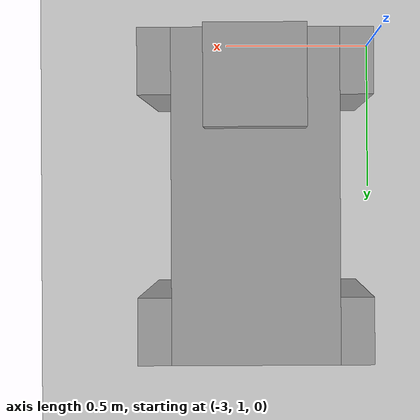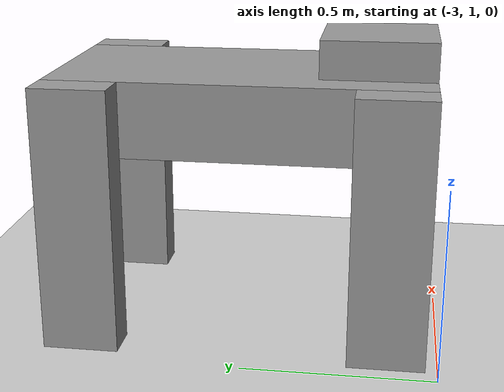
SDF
<sdf version="1.6">
 <world name="default">
  <model name="ground_plane">
   <static>1</static>
   <link name="link">
    <collision name="collision">
     <geometry><plane><normal>0 0 1</normal><size>100 100</size></plane></geometry>
     <surface>
      <contact><collide_bitmask>65535</collide_bitmask></contact>
      <friction><ode><mu>100</mu><mu2>50</mu2></ode></friction>
     </surface>
    </collision>
    <visual name="visual">
     <cast_shadows>0</cast_shadows>
     <geometry><plane><normal>0 0 1</normal><size>100 100</size></plane></geometry>
     <material>
      <script><uri>file://media/materials/scripts/gazebo.material</uri><name>Gazebo/Grey</name></script>
     </material>
    </visual>
   </link>
  </model>
  <model name="robot">
   <link name="link_1_clone">
    <inertial>
     <mass>1</mass>
     <inertia>
      <ixx>0.166667</ixx>
      <ixy>0</ixy>
      <ixz>0</ixz>
      <iyy>0.166667</iyy>
      <iyz>0</iyz>
      <izz>0.166667</izz>
     </inertia>
    </inertial>
    <pose>1e-06 0.058332 0.141667 0 -0 0</pose>
    <visual name="visual">
     <geometry><box><size>0.5 1 0.2</size></box></geometry>
     <material>
      <lighting>1</lighting>
      <script><uri>file://media/materials/scripts/gazebo.material</uri><name>Gazebo/Grey</name></script>
      <shader type="pixel"><normal_map>__default__</normal_map></shader>
      <ambient>0.3 0.3 0.3 1</ambient>
      <diffuse>0.7 0.7 0.7 1</diffuse>
      <specular>0.01 0.01 0.01 1</specular>
      <emissive>0 0 0 1</emissive>
     </material>
    </visual>
    <collision name="collision">
     <geometry><box><size>0.5 1 0.2</size></box></geometry>
     <surface>
      <friction>
       <ode><mu>1</mu><mu2>1</mu2><fdir1>0 0 0</fdir1><slip1>0</slip1><slip2>0</slip2></ode>
       <torsional>
        <coefficient>1</coefficient>
        <patch_radius>0</patch_radius>
        <surface_radius>0</surface_radius>
        <use_patch_radius>1</use_patch_radius>
        <ode><slip>0</slip></ode>
       </torsional>
      </friction>
      <bounce><restitution_coefficient>0</restitution_coefficient><threshold>1e+06</threshold></bounce>
      <contact>
       <collide_without_contact>0</collide_without_contact>
       <collide_without_contact_bitmask>1</collide_without_contact_bitmask>
       <collide_bitmask>1</collide_bitmask>
       <ode>
        <soft_cfm>0</soft_cfm>
        <soft_erp>0.2</soft_erp>
        <kp>1e+13</kp>
        <kd>1</kd>
        <max_vel>0.01</max_vel>
        <min_depth>0</min_depth>
       </ode>
       <bullet>
        <split_impulse>1</split_impulse>
        <split_impulse_penetration_threshold>-0.01</split_impulse_penetration_threshold>
        <soft_cfm>0</soft_cfm>
        <soft_erp>0.2</soft_erp>
        <kp>1e+13</kp>
        <kd>1</kd>
       </bullet>
      </contact>
     </surface>
    </collision>
   </link>
   <link name="link_3_clone">
    <inertial>
     <mass>1</mass>
     <inertia>
      <ixx>0.166667</ixx>
      <ixy>0</ixy>
      <ixz>0</ixz>
      <iyy>0.166667</iyy>
      <iyz>0</iyz>
      <izz>0.166667</izz>
     </inertia>
    </inertial>
    <pose>0.300001 0.458331 -0.108333 0 -0 0</pose>
    <visual name="visual">
     <geometry><box><size>0.1 0.2 0.7</size></box></geometry>
     <material>
      <lighting>1</lighting>
      <script><uri>file://media/materials/scripts/gazebo.material</uri><name>Gazebo/Grey</name></script>
      <shader type="pixel"><normal_map>__default__</normal_map></shader>
      <ambient>0.3 0.3 0.3 1</ambient>
      <diffuse>0.7 0.7 0.7 1</diffuse>
      <specular>0.01 0.01 0.01 1</specular>
      <emissive>0 0 0 1</emissive>
     </material>
    </visual>
    <collision name="collision">
     <geometry><box><size>0.1 0.2 0.7</size></box></geometry>
     <surface>
      <friction>
       <ode><mu>1</mu><mu2>1</mu2><fdir1>0 0 0</fdir1><slip1>0</slip1><slip2>0</slip2></ode>
       <torsional>
        <coefficient>1</coefficient>
        <patch_radius>0</patch_radius>
        <surface_radius>0</surface_radius>
        <use_patch_radius>1</use_patch_radius>
        <ode><slip>0</slip></ode>
       </torsional>
      </friction>
      <bounce><restitution_coefficient>0</restitution_coefficient><threshold>1e+06</threshold></bounce>
      <contact>
       <collide_without_contact>0</collide_without_contact>
       <collide_without_contact_bitmask>1</collide_without_contact_bitmask>
       <collide_bitmask>1</collide_bitmask>
       <ode>
        <soft_cfm>0</soft_cfm>
        <soft_erp>0.2</soft_erp>
        <kp>1e+13</kp>
        <kd>1</kd>
        <max_vel>0.01</max_vel>
        <min_depth>0</min_depth>
       </ode>
       <bullet>
        <split_impulse>1</split_impulse>
        <split_impulse_penetration_threshold>-0.01</split_impulse_penetration_threshold>
        <soft_cfm>0</soft_cfm>
        <soft_erp>0.2</soft_erp>
        <kp>1e+13</kp>
        <kd>1</kd>
       </bullet>
      </contact>
     </surface>
    </collision>
   </link>
   <link name="link_3_clone_clone">
    <inertial>
     <mass>1</mass>
     <inertia>
      <ixx>0.166667</ixx>
      <ixy>0</ixy>
      <ixz>0</ixz>
      <iyy>0.166667</iyy>
      <iyz>0</iyz>
      <izz>0.166667</izz>
     </inertia>
    </inertial>
    <pose>-0.299999 -0.341668 -0.108333 0 -0 0</pose>
    <visual name="visual">
     <geometry><box><size>0.1 0.2 0.7</size></box></geometry>
     <material>
      <lighting>1</lighting>
      <script><uri>file://media/materials/scripts/gazebo.material</uri><name>Gazebo/Grey</name></script>
      <shader type="pixel"><normal_map>__default__</normal_map></shader>
      <ambient>0.3 0.3 0.3 1</ambient>
      <diffuse>0.7 0.7 0.7 1</diffuse>
      <specular>0.01 0.01 0.01 1</specular>
      <emissive>0 0 0 1</emissive>
     </material>
    </visual>
    <collision name="collision">
     <geometry><box><size>0.1 0.2 0.7</size></box></geometry>
     <surface>
      <friction>
       <ode><mu>1</mu><mu2>1</mu2><fdir1>0 0 0</fdir1><slip1>0</slip1><slip2>0</slip2></ode>
       <torsional>
        <coefficient>1</coefficient>
        <patch_radius>0</patch_radius>
        <surface_radius>0</surface_radius>
        <use_patch_radius>1</use_patch_radius>
        <ode><slip>0</slip></ode>
       </torsional>
      </friction>
      <bounce><restitution_coefficient>0</restitution_coefficient><threshold>1e+06</threshold></bounce>
      <contact>
       <collide_without_contact>0</collide_without_contact>
       <collide_without_contact_bitmask>1</collide_without_contact_bitmask>
       <collide_bitmask>1</collide_bitmask>
       <ode>
        <soft_cfm>0</soft_cfm>
        <soft_erp>0.2</soft_erp>
        <kp>1e+13</kp>
        <kd>1</kd>
        <max_vel>0.01</max_vel>
        <min_depth>0</min_depth>
       </ode>
       <bullet>
        <split_impulse>1</split_impulse>
        <split_impulse_penetration_threshold>-0.01</split_impulse_penetration_threshold>
        <soft_cfm>0</soft_cfm>
        <soft_erp>0.2</soft_erp>
        <kp>1e+13</kp>
        <kd>1</kd>
       </bullet>
      </contact>
     </surface>
    </collision>
   </link>
   <link name="link_3_clone_clone_0">
    <inertial>
     <mass>1</mass>
     <inertia>
      <ixx>0.166667</ixx>
      <ixy>0</ixy>
      <ixz>0</ixz>
      <iyy>0.166667</iyy>
      <iyz>0</iyz>
      <izz>0.166667</izz>
     </inertia>
    </inertial>
    <pose>-0.299999 0.458331 -0.108333 0 -0 0</pose>
    <visual name="visual">
     <geometry><box><size>0.1 0.2 0.7</size></box></geometry>
     <material>
      <lighting>1</lighting>
      <script><uri>file://media/materials/scripts/gazebo.material</uri><name>Gazebo/Grey</name></script>
      <shader type="pixel"><normal_map>__default__</normal_map></shader>
      <ambient>0.3 0.3 0.3 1</ambient>
      <diffuse>0.7 0.7 0.7 1</diffuse>
      <specular>0.01 0.01 0.01 1</specular>
      <emissive>0 0 0 1</emissive>
     </material>
    </visual>
    <collision name="collision">
     <geometry><box><size>0.1 0.2 0.7</size></box></geometry>
     <surface>
      <friction>
       <ode><mu>1</mu><mu2>1</mu2><fdir1>0 0 0</fdir1><slip1>0</slip1><slip2>0</slip2></ode>
       <torsional>
        <coefficient>1</coefficient>
        <patch_radius>0</patch_radius>
        <surface_radius>0</surface_radius>
        <use_patch_radius>1</use_patch_radius>
        <ode><slip>0</slip></ode>
       </torsional>
      </friction>
      <bounce><restitution_coefficient>0</restitution_coefficient><threshold>1e+06</threshold></bounce>
      <contact>
       <collide_without_contact>0</collide_without_contact>
       <collide_without_contact_bitmask>1</collide_without_contact_bitmask>
       <collide_bitmask>1</collide_bitmask>
       <ode>
        <soft_cfm>0</soft_cfm>
        <soft_erp>0.2</soft_erp>
        <kp>1e+13</kp>
        <kd>1</kd>
        <max_vel>0.01</max_vel>
        <min_depth>0</min_depth>
       </ode>
       <bullet>
        <split_impulse>1</split_impulse>
        <split_impulse_penetration_threshold>-0.01</split_impulse_penetration_threshold>
        <soft_cfm>0</soft_cfm>
        <soft_erp>0.2</soft_erp>
        <kp>1e+13</kp>
        <kd>1</kd>
       </bullet>
      </contact>
     </surface>
    </collision>
   </link>
   <link name="link_3_clone_clone_1">
    <inertial>
     <mass>1</mass>
     <inertia>
      <ixx>0.166667</ixx>
      <ixy>0</ixy>
      <ixz>0</ixz>
      <iyy>0.166667</iyy>
      <iyz>0</iyz>
      <izz>0.166667</izz>
     </inertia>
    </inertial>
    <pose>0.300001 -0.341668 -0.108333 0 -0 0</pose>
    <visual name="visual">
     <geometry><box><size>0.1 0.2 0.7</size></box></geometry>
     <material>
      <lighting>1</lighting>
      <script><uri>file://media/materials/scripts/gazebo.material</uri><name>Gazebo/Grey</name></script>
      <shader type="pixel"><normal_map>__default__</normal_map></shader>
      <ambient>0.3 0.3 0.3 1</ambient>
      <diffuse>0.7 0.7 0.7 1</diffuse>
      <specular>0.01 0.01 0.01 1</specular>
      <emissive>0 0 0 1</emissive>
     </material>
    </visual>
    <collision name="collision">
     <geometry><box><size>0.1 0.2 0.7</size></box></geometry>
     <surface>
      <friction>
       <ode><mu>1</mu><mu2>1</mu2><fdir1>0 0 0</fdir1><slip1>0</slip1><slip2>0</slip2></ode>
       <torsional>
        <coefficient>1</coefficient>
        <patch_radius>0</patch_radius>
        <surface_radius>0</surface_radius>
        <use_patch_radius>1</use_patch_radius>
        <ode><slip>0</slip></ode>
       </torsional>
      </friction>
      <bounce><restitution_coefficient>0</restitution_coefficient><threshold>1e+06</threshold></bounce>
      <contact>
       <collide_without_contact>0</collide_without_contact>
       <collide_without_contact_bitmask>1</collide_without_contact_bitmask>
       <collide_bitmask>1</collide_bitmask>
       <ode>
        <soft_cfm>0</soft_cfm>
        <soft_erp>0.2</soft_erp>
        <kp>1e+13</kp>
        <kd>1</kd>
        <max_vel>0.01</max_vel>
        <min_depth>0</min_depth>
       </ode>
       <bullet>
        <split_impulse>1</split_impulse>
        <split_impulse_penetration_threshold>-0.01</split_impulse_penetration_threshold>
        <soft_cfm>0</soft_cfm>
        <soft_erp>0.2</soft_erp>
        <kp>1e+13</kp>
        <kd>1</kd>
       </bullet>
      </contact>
     </surface>
    </collision>
   </link>
   <link name="link_4_clone">
    <inertial>
     <mass>1</mass>
     <inertia>
      <ixx>0.166667</ixx>
      <ixy>0</ixy>
      <ixz>0</ixz>
      <iyy>0.166667</iyy>
      <iyz>0</iyz>
      <izz>0.166667</izz>
     </inertia>
    </inertial>
    <pose>1e-06 -0.291669 0.291667 0 -0 0</pose>
    <visual name="visual">
     <geometry><box><size>0.3 0.3 0.1</size></box></geometry>
     <material>
      <lighting>1</lighting>
      <script><uri>file://media/materials/scripts/gazebo.material</uri><name>Gazebo/Grey</name></script>
      <shader type="pixel"><normal_map>__default__</normal_map></shader>
      <ambient>0.3 0.3 0.3 1</ambient>
      <diffuse>0.7 0.7 0.7 1</diffuse>
      <specular>0.01 0.01 0.01 1</specular>
      <emissive>0 0 0 1</emissive>
     </material>
    </visual>
    <collision name="collision">
     <geometry><box><size>0.3 0.3 0.1</size></box></geometry>
     <surface>
      <friction>
       <ode><mu>1</mu><mu2>1</mu2><fdir1>0 0 0</fdir1><slip1>0</slip1><slip2>0</slip2></ode>
       <torsional>
        <coefficient>1</coefficient>
        <patch_radius>0</patch_radius>
        <surface_radius>0</surface_radius>
        <use_patch_radius>1</use_patch_radius>
        <ode><slip>0</slip></ode>
       </torsional>
      </friction>
      <bounce><restitution_coefficient>0</restitution_coefficient><threshold>1e+06</threshold></bounce>
      <contact>
       <collide_without_contact>0</collide_without_contact>
       <collide_without_contact_bitmask>1</collide_without_contact_bitmask>
       <collide_bitmask>1</collide_bitmask>
       <ode>
        <soft_cfm>0</soft_cfm>
        <soft_erp>0.2</soft_erp>
        <kp>1e+13</kp>
        <kd>1</kd>
        <max_vel>0.01</max_vel>
        <min_depth>0</min_depth>
       </ode>
       <bullet>
        <split_impulse>1</split_impulse>
        <split_impulse_penetration_threshold>-0.01</split_impulse_penetration_threshold>
        <soft_cfm>0</soft_cfm>
        <soft_erp>0.2</soft_erp>
        <kp>1e+13</kp>
        <kd>1</kd>
       </bullet>
      </contact>
     </surface>
    </collision>
   </link>
   <joint name="link_1_clone_JOINT_1" type="revolute">
    <parent>link_1_clone</parent>
    <child>link_3_clone_clone_1</child>
    <axis>
     <xyz>1 0 0</xyz>
     <limit>
      <lower>-1.79769e+308</lower>
      <upper>1.79769e+308</upper>
      <effort>-1</effort>
      <velocity>-1</velocity>
     </limit>
     <dynamics>
      <spring_reference>0</spring_reference>
      <spring_stiffness>0</spring_stiffness>
      <damping>0</damping>
     </dynamics>
     <use_parent_model_frame>0</use_parent_model_frame>
    </axis>
    <physics>
     <ode><limit><cfm>0</cfm><erp>0.2</erp></limit><suspension><cfm>0</cfm><erp>0.2</erp></suspension></ode>
    </physics>
   </joint>
   <joint name="link_1_clone_JOINT_2" type="revolute">
    <parent>link_1_clone</parent>
    <child>link_3_clone_clone</child>
    <axis>
     <xyz>1 0 0</xyz>
     <limit>
      <lower>-1.79769e+308</lower>
      <upper>1.79769e+308</upper>
      <effort>-1</effort>
      <velocity>-1</velocity>
     </limit>
     <dynamics>
      <spring_reference>0</spring_reference>
      <spring_stiffness>0</spring_stiffness>
      <damping>0</damping>
     </dynamics>
     <use_parent_model_frame>0</use_parent_model_frame>
    </axis>
    <physics>
     <ode><limit><cfm>0</cfm><erp>0.2</erp></limit><suspension><cfm>0</cfm><erp>0.2</erp></suspension></ode>
    </physics>
   </joint>
   <joint name="link_1_clone_JOINT_3" type="revolute">
    <parent>link_1_clone</parent>
    <child>link_3_clone_clone_0</child>
    <axis>
     <xyz>1 0 0</xyz>
     <limit>
      <lower>-1.79769e+308</lower>
      <upper>1.79769e+308</upper>
      <effort>-1</effort>
      <velocity>-1</velocity>
     </limit>
     <dynamics>
      <spring_reference>0</spring_reference>
      <spring_stiffness>0</spring_stiffness>
      <damping>0</damping>
     </dynamics>
     <use_parent_model_frame>0</use_parent_model_frame>
    </axis>
    <physics>
     <ode><limit><cfm>0</cfm><erp>0.2</erp></limit><suspension><cfm>0</cfm><erp>0.2</erp></suspension></ode>
    </physics>
   </joint>
   <joint name="link_1_clone_JOINT_4" type="revolute">
    <parent>link_1_clone</parent>
    <child>link_3_clone</child>
    <axis>
     <xyz>1 0 0</xyz>
     <limit>
      <lower>-1.79769e+308</lower>
      <upper>1.79769e+308</upper>
      <effort>-1</effort>
      <velocity>-1</velocity>
     </limit>
     <dynamics>
      <spring_reference>0</spring_reference>
      <spring_stiffness>0</spring_stiffness>
      <damping>0</damping>
     </dynamics>
     <use_parent_model_frame>0</use_parent_model_frame>
    </axis>
    <physics>
     <ode><limit><cfm>0</cfm><erp>0.2</erp></limit><suspension><cfm>0</cfm><erp>0.2</erp></suspension></ode>
    </physics>
   </joint>
   <joint name="link_1_clone_JOINT_5" type="revolute">
    <parent>link_1_clone</parent>
    <child>link_4_clone</child>
    <axis>
     <xyz>0 0 1</xyz>
     <limit>
      <lower>-1.79769e+308</lower>
      <upper>1.79769e+308</upper>
      <effort>-1</effort>
      <velocity>-1</velocity>
     </limit>
     <dynamics>
      <spring_reference>0</spring_reference>
      <spring_stiffness>0</spring_stiffness>
      <damping>0</damping>
     </dynamics>
     <use_parent_model_frame>0</use_parent_model_frame>
    </axis>
    <physics>
     <ode><limit><cfm>0</cfm><erp>0.2</erp></limit><suspension><cfm>0</cfm><erp>0.2</erp></suspension></ode>
    </physics>
   </joint>
   <static>0</static>
   <pose>-2.6057 1.47249 0.458333 0 -1e-06 -0.000124</pose>
  </model>
 </world>
</sdf>
